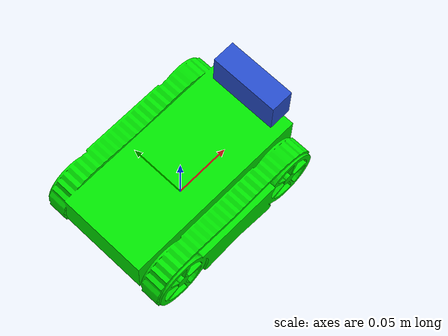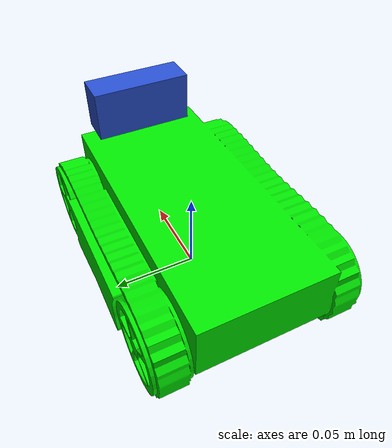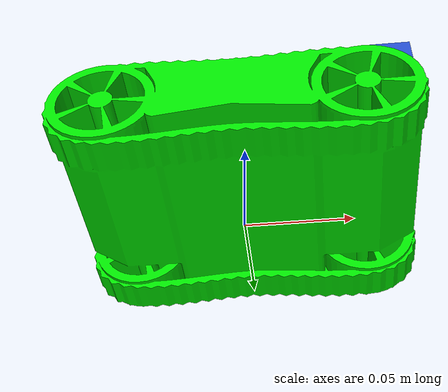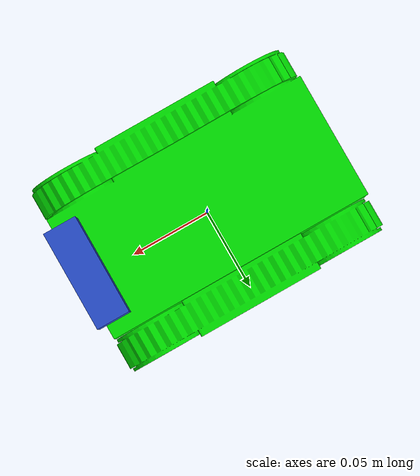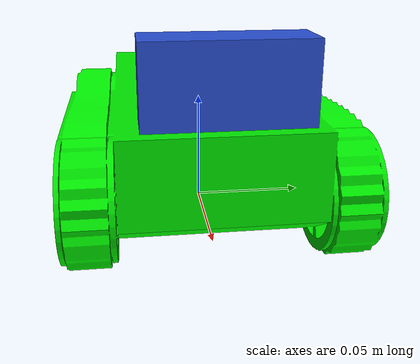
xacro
<?xml version="1.0"?>
<robot xmlns:xacro="http://www.ros.org/wiki/xacro" name="sock">
	<xacro:property name="length" value="0.173"/>
	<xacro:property name="width" value="0.080"/>
	<xacro:property name="height" value="0.050"/>

	<material name="color1">
		<color rgba="0 0.9 0 1"/>
	</material>

	<material name="color2">
		<color rgba="0 0 1 1"/>
	</material>
	<link name="base_link">
		<visual>
      <geometry>
        <mesh filename="package://sock_description/meshes/sock7.dae"/>
			</geometry>
			<origin rpy="0 0 1.57075" xyz="0 0 0.0"/>
			<material name="color1"/>
		</visual>
		<collision>
			<geometry>
				<box size="${length} ${width} ${height}"/>
			</geometry>
			<origin rpy="0 0 0" xyz="0 0 0.032"/>
		</collision>
		<inertial>
			<mass value="0.300"/>
			<inertia ixx="0.0001" ixy="0" ixz="0" iyy="0.0001" iyz="0" izz="0.0001"/>
		</inertial>
	</link>

	<gazebo reference="base_link">
		<material>Gazebo/RedBright</material>
	</gazebo>

	<link name="left_wheel">
		<visual>
			<geometry>
				<cylinder length="0.001" radius="0.001"/>
			</geometry>
			<origin rpy="1.57075 0 0" xyz="0 0.0495 0.0"/>
			<material name="color2"/>
		</visual>

		<collision>
			<geometry>
				<cylinder length="0.018" radius="0.026"/>
			</geometry>
			<origin rpy="1.57075 0 0" xyz="0 0.0495 0.0"/>
		</collision>

		<inertial>
			<mass value="0.075"/>
			<inertia ixx="0.0001" ixy="0" ixz="0" iyy="0.0001" iyz="0" izz="0.0001"/>
		</inertial>
	</link>

	<gazebo reference="left_wheel">
		<material>Gazebo/Orange</material>
	</gazebo>

	<link name="right_wheel">
		<visual>
			<geometry>
				<cylinder length="0.00018" radius="0.00026"/>
			</geometry>
			<origin rpy="1.57075 0 0" xyz="0 -0.0495 0.0"/>
			<material name="color2"/>
		</visual>
		<collision>
			<geometry>
				<cylinder length="0.018" radius="0.026"/>
			</geometry>
			<origin rpy="1.57075 0 0" xyz="0 -0.0495 0.0"/>
		</collision>
		<inertial>
			<mass value="0.075"/>
			<inertia ixx="0.0001" ixy="0" ixz="0" iyy="0.0001" iyz="0" izz="0.0001"/>
		</inertial>
	</link>

	<gazebo reference="right_wheel">
		<material>Gazebo/Orange</material>
	</gazebo>

	<link name="front_ball">
		<visual>
			<geometry>
				<sphere radius="0.00026"/>
			</geometry>
			<origin rpy="0 0 0" xyz="0.0605 0 0.0261"/>
			<material name="color1"/>
		</visual>
		<collision>
			<geometry>
				<sphere radius="0.026"/>
			</geometry>
			<origin rpy="0 0 0" xyz="0.0605 0 0.0261"/>
		</collision>
		<inertial>
			<mass value="0.05"/>
			<inertia ixx="0.0001" ixy="0" ixz="0" iyy="0.0001" iyz="0" izz="0.0001"/>
		</inertial>
	</link>

	<link name="back_ball">
		<visual>
			<geometry>
				<sphere radius="0.00026"/>
			</geometry>
			<origin rpy="0 0 0" xyz="-0.0605 0 0.0261"/>
			<material name="color1"/>
		</visual>
		<collision>
			<geometry>
				<sphere radius="0.026"/>
			</geometry>
			<origin rpy="0 0 0" xyz="-0.0605 0 0.0261"/>
		</collision>
		<inertial>
			<mass value="0.05"/>
			<inertia ixx="0.0001" ixy="0" ixz="0" iyy="0.0001" iyz="0" izz="0.0001"/>
		</inertial>
	</link>

	<!-- Camera -->
	<xacro:property name="x" value="0"/>
	<xacro:property name="y" value="0"/>
	<xacro:property name="z" value="0"/>

	<xacro:property name="r" value="0"/>
	<xacro:property name="p" value="0"/>
	<xacro:property name="y" value="0"/>

	<joint name="camera_joint" type="fixed">
		<axis xyz="1 0 0"/>
		<origin xyz="${length/2-0.01} 0 ${height+0.025}" rpy="${r} ${p} ${y}"/>
		<parent link="base_link"/>
		<child link="camera_link"/>_
	</joint>

	<link name="camera_link">
		<collision>
			<origin xyz="${x} ${y} ${z}" rpy="${r} ${p} ${y}"/>
			<geometry>
				<box size="0.02 0.06 0.03"/>
			</geometry>
		</collision>
		<visual>
			<origin xyz="${x} ${y} ${z}" rpy="${r} ${p} ${y}"/>
			<geometry>
				<box size="0.02 0.06 0.03"/>
			</geometry>
			<material name="blue"/>
		</visual>
		<inertial>
			<mass value="1e-5"/>
			<origin xyz="${x} ${y} ${z}" rpy="${r} ${p} ${y}"/>
			<inertia ixx="1e-6" ixy="0" ixz="0" iyy="1e-6" iyz="0" izz="1e-6"/>
		</inertial>
	</link>

	<joint name="camera_depth_joint" type="fixed">
		<origin xyz="0 0 ${height+0.025}" rpy="1.5708 3.1415 1.5708"/>
		<parent link="camera_link"/>
		<child link="camera_depth_link"/>
	</joint>

	<link name="camera_depth_link">
	</link>

	<!-- Depth camera details, source: https://answers.ros.org/question/301164/adding-a-3d-camera-to-a-robot-armur5-in-urdf-for-rviz-and-gazebo/-->
	<gazebo reference="camera_link">
		<sensor type="depth" name="sock">
			<always_on>true</always_on>
			<visualize>true</visualize>
			<camera>
				<horizontal_fov>1.047</horizontal_fov>
				<image>
					<width>640</width>
					<height>480</height>
					<format>R8G8B8</format>
				</image>
				<depth_camera>

				</depth_camera>
				<clip>
					<near>0.001</near>
					<far>100</far>
				</clip>
			</camera>
			<plugin name="camera_controller" filename="libgazebo_ros_openni_kinect.so">
				<baseline>0.2</baseline>
				<alwaysOn>true</alwaysOn>
				<updateRate>10.0</updateRate>
				<cameraName>sock</cameraName>
				<frameName>camera_depth_link</frameName> <!--extra link made for the depth camera -->
				<imageTopicName>rgb/image_raw</imageTopicName>
				<depthImageTopicName>depth/image_raw</depthImageTopicName>
				<pointCloudTopicName>depth/points</pointCloudTopicName>
				<cameraInfoTopicName>rgb/camera_info</cameraInfoTopicName>
				<depthImageCameraInfoTopicName>depth/camera_info</depthImageCameraInfoTopicName>
				<pointCloudCutoff>0.4</pointCloudCutoff>
				<hackBaseline>0.07</hackBaseline>
				<distortionK1>0.0</distortionK1>
				<distortionK2>0.0</distortionK2>
				<distortionK3>0.0</distortionK3>
				<distortionT1>0.0</distortionT1>
				<distortionT2>0.0</distortionT2>
				<CxPrime>0.0</CxPrime>
				<Cx>0.0</Cx>
				<Cy>0.0</Cy>
				<focalLength>0.0</focalLength>
			</plugin>
		</sensor>
	</gazebo>

	<!--Lidar-->
	<joint name="lidar_joint" type="fixed">
		<origin xyz="0 0 ${height+0.025}" rpy="0 0 0"/>
		<parent link="camera_link"/>
		<child link="lidar_link"/>
	</joint>

	<link name="lidar_link">
	</link>
	<!-- hokuyo -->
	<gazebo reference="camera_link">
		<sensor type="gpu_ray" name="head_hokuyo_sensor">
			<pose>0 0 0 0 0 0</pose>
			<visualize>false</visualize>
			<update_rate>40</update_rate>
			<ray>
				<scan>
					<horizontal>
						<samples>720</samples>
						<resolution>1</resolution>
						<min_angle>-1.570796</min_angle>
						<max_angle>1.570796</max_angle>
					</horizontal>
				</scan>
				<range>
					<min>0.10</min>
					<max>30.0</max>
					<resolution>0.01</resolution>
				</range>
				<noise>
					<type>gaussian</type>
	  <mean>0.0</mean>
	  <stddev>0.01</stddev>
  </noise>
      </ray>
      <plugin name="gazebo_ros_head_hokuyo_controller" filename="libgazebo_ros_gpu_laser.so">
	      <topicName>/sock/laser/scan</topicName>
	      <frameName>lidar_link</frameName>
      </plugin>
    </sensor>
  </gazebo>
  <joint name="base_to_left_wheel" type="continuous">
	  <parent link="base_link"/>
	  <child link="left_wheel"/>
	  <axis xyz="0 1 0"/>
	  <origin xyz="0 0 0.026"/>
  </joint>

  <transmission name="base_to_left_wheel">
	  <type>transmission_interface/SimpleTransmission</type>
	  <actuator name="$base_to_left_wheel">
		  <mechanicalReduction>1</mechanicalReduction>
	  </actuator>
	  <joint name="base_to_left_wheel">
		  <hardwareInterface>hardware_interface/VelocityJointInterface</hardwareInterface>
	  </joint>
  </transmission>

  <gazebo reference="base_to_left_wheel">
	  <mu1 value="200.0"/>
	  <mu2 value="100.0"/>
	  <kp value="10000000.0"/>
	  <kd value="1.0"/>
	  <material>Gazebo/Grey</material>
  </gazebo>

  <joint name="base_to_right_wheel" type="continuous">
	  <parent link="base_link"/>
	  <child link="right_wheel"/>
	  <axis xyz="0 1 0"/>
	  <origin xyz="0 0 0.026"/>
  </joint>

  <transmission name="base_to_right_wheel">
	  <type>transmission_interface/SimpleTransmission</type>
	  <actuator name="$base_to_right_wheel">
		  <mechanicalReduction>1</mechanicalReduction>
	  </actuator>
	  <joint name="base_to_right_wheel">
		  <hardwareInterface>hardware_interface/VelocityJointInterface</hardwareInterface>
	  </joint>
  </transmission>

  <gazebo reference="base_to_right_wheel">
	  <mu1 value="200.0"/>
	  <mu2 value="100.0"/>
	  <kp value="10000000.0"/>
	  <kd value="1.0"/>
	  <material>Gazebo/Grey</material>
  </gazebo>

  <joint name="base_to_front_ball" type="fixed">
	  <parent link="base_link"/>
	  <child link="front_ball"/>
	  <dynamics damping="0.0" friction="0.0"/>
  </joint>
  <gazebo reference="base_to_front_ball">
	  <mu1 value="0.0"/>
	  <mu2 value="0.0"/>
	  <kp value="10000.0"/>
	  <kd value="1.0"/>
	  <material>Gazebo/Grey</material>
  </gazebo>

  <joint name="base_to_back_ball" type="fixed">
	  <parent link="base_link"/>
	  <child link="back_ball"/>
	  <dynamics damping="0.0" friction="0.0"/>
  </joint>

  <gazebo reference="base_to_back_ball">
	  <mu1 value="0.0"/>
	  <mu2 value="0.0"/>
	  <kp value="10000.0"/>
	  <kd value="1.0"/>
	  <material>Gazebo/Grey</material>
  </gazebo>

  <gazebo>
	  <plugin name="gazebo_ros_control" filename="libgazebo_ros_control.so">
		  <robotNamespace>/</robotNamespace>
	  </plugin>
  </gazebo>
</robot>
